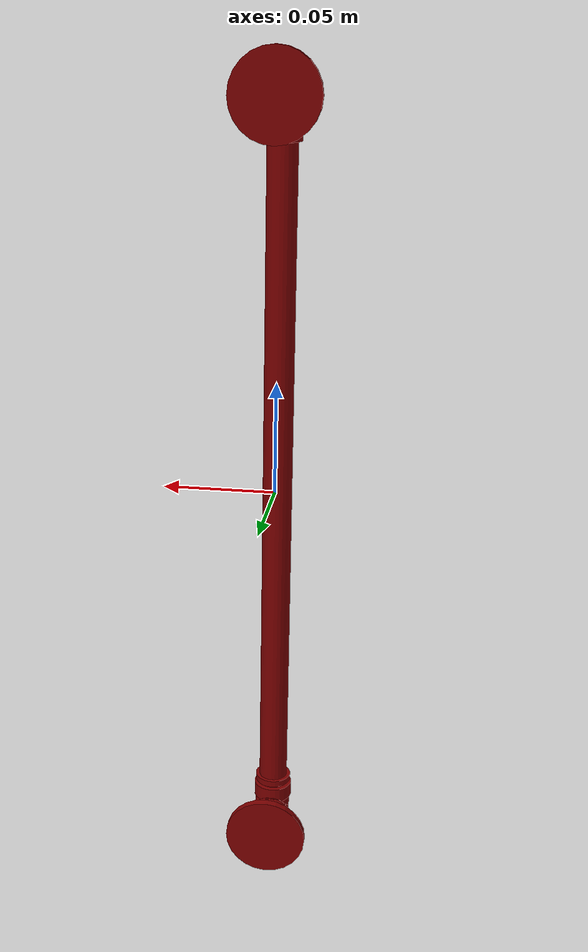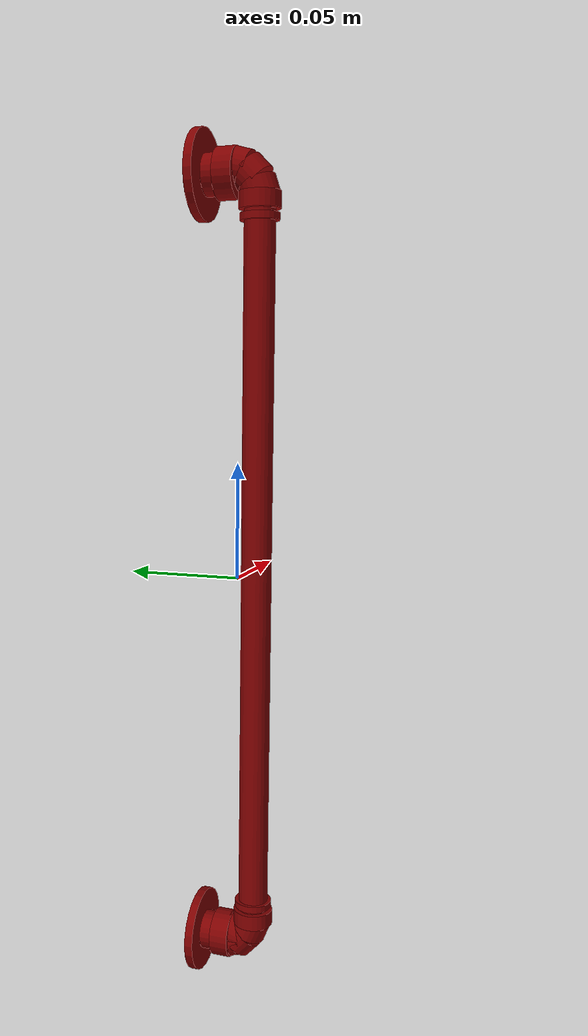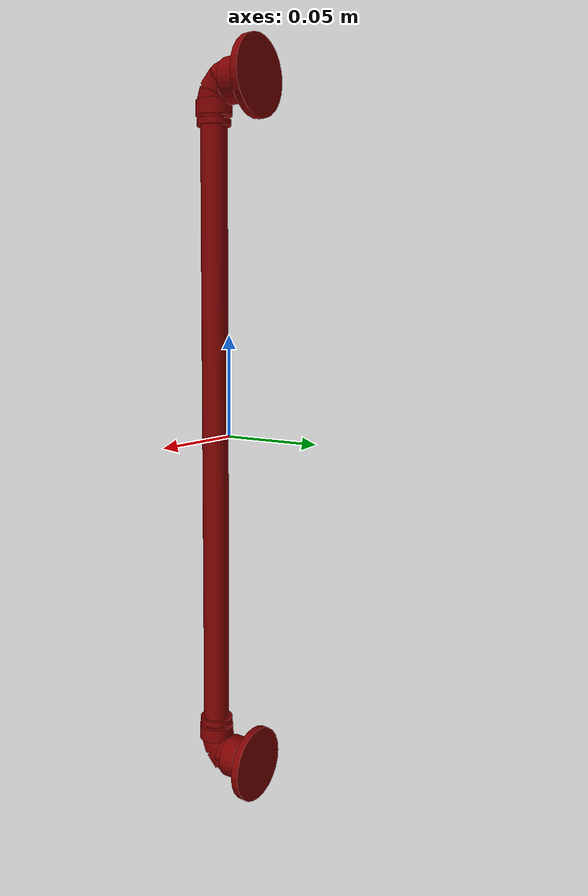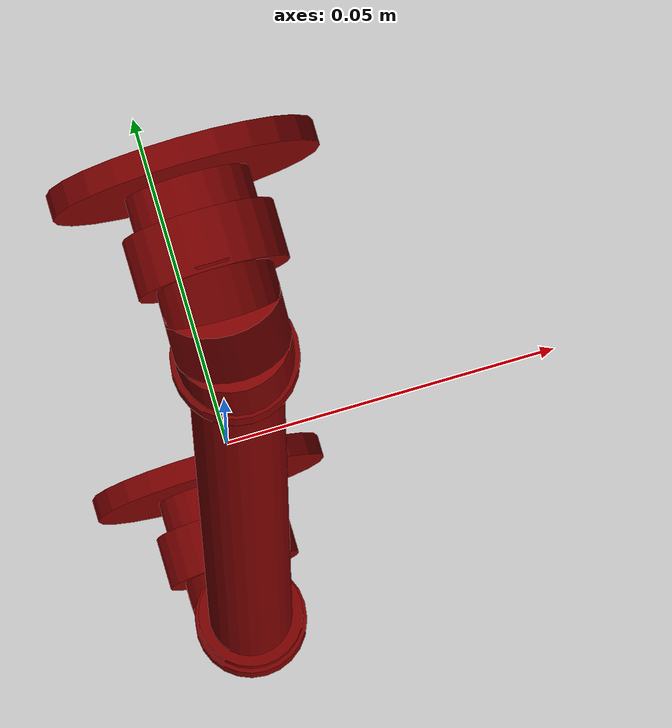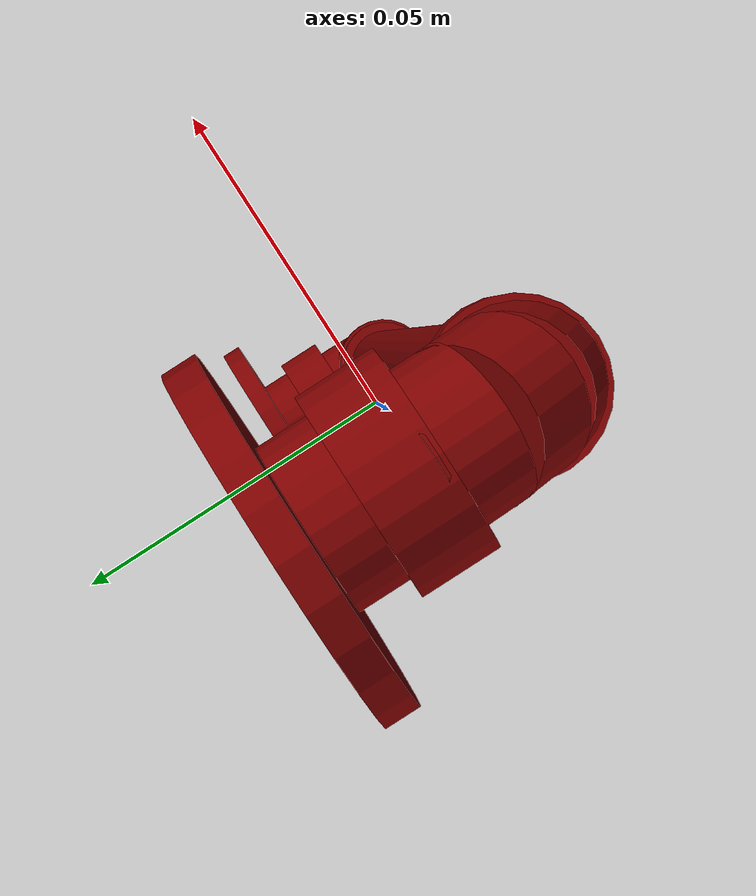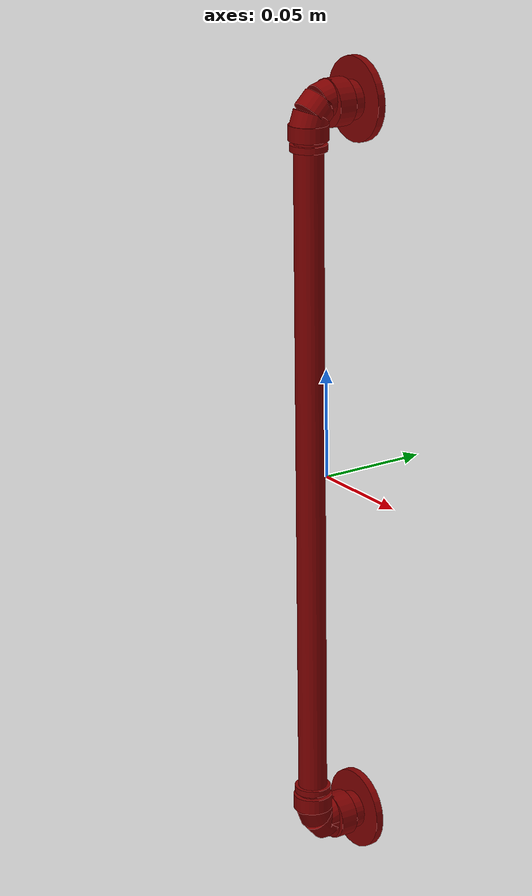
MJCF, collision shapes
<?xml version='1.0' encoding='UTF-8'?>
<mujoco model="model">
  <option timestep="0.002" gravity="0.0 0.0 -9.81"/>
  <compiler angle="radian"/>
  <asset>
    <mesh file="visuals/CabinetHandle024.obj" name="CabinetHandle024_vis"/>
    <texture file="visuals/T_BC001.png" name="tex" type="2d"/>
    <material name="mat" rgba="1 1 1 1.0" texture="tex" shininess="0.5" specular="0.3103448502657381"/>
  </asset>
  <default>
    <default class="visual">
      <geom conaffinity="0" contype="0" group="1" type="mesh"/>
    </default>
    <default class="collision">
      <geom group="0" rgba="0.5 0 0 0.5" density="1.0" solref="0.004 1" solimp="0.998 0.998 0.001"/>
    </default>
    <default class="spawn">
      <geom group="0" rgba="1 1 1 0.5" contype="0" conaffinity="0"/>
      <site group="0" rgba="1 1 1 0.5"/>
    </default>
    <default class="region">
      <geom group="1" conaffinity="0" contype="0" rgba="0 1 0 0" mass="0"/>
    </default>
  </default>
  <worldbody>
    <body>
      <body name="object">
        <geom mesh="CabinetHandle024_vis" type="mesh" solimp="0.998 0.998 0.001" solref="0.001 1" friction="0.95 0.3 0.1" class="visual" material="mat"/>
        <geom type="cylinder" pos="0.00000000 -0.00868421 0.00000000" size="0.006600239314138889 0.15468235313892365" quat="1.0 0.0 0.0 0.0" class="collision"/>
        <geom type="cylinder" pos="0.00002970 -0.00868389 0.15108328" size="0.008304758928716183 0.0014920090325176716" quat="1.0 0.0 0.0 0.0" class="collision"/>
        <geom type="cylinder" pos="0.00002970 -0.00868389 0.15761906" size="0.008858817629516125 0.003446632996201515" quat="1.0 0.0 0.0 0.0" class="collision"/>
        <geom type="cylinder" pos="0.00002970 -0.00824616 0.16166693" size="0.00817962922155857 0.0039684707298874855" quat="0.9868723750114441 -0.16150222718715668 -3.5860698230284855e-17 5.875262472686947e-25" class="collision"/>
        <geom type="cylinder" pos="0.00002970 -0.00499449 0.16749978" size="0.00817962922155857 0.003968469798564911" quat="0.9256041049957275 -0.3784931004047394 -8.404235094622056e-17 -7.293479073283611e-25" class="collision"/>
        <geom type="cylinder" pos="0.00002970 0.00010932 0.17061262" size="0.00817962922155857 0.0039684707298874855" quat="0.7993851900100708 -0.6008188724517822 -1.3340860239994856e-16 -1.4669232986322927e-23" class="collision"/>
        <geom type="cylinder" pos="0.00002970 0.00497106 0.16886334" size="0.01061407383531332 0.004129537381231785" quat="0.7071068286895752 -0.7071067690849304 -0.0 0.0" class="collision"/>
        <geom type="cylinder" pos="0.00002970 0.01248147 0.16880602" size="0.008694551885128021 0.003382723778486252" quat="0.7071068286895752 -0.7071067690849304 -0.0 0.0" class="collision"/>
        <geom type="cylinder" pos="0.00002970 0.01626533 0.16886334" size="0.018710074946284294 0.0017944127321243286" quat="0.7071068286895752 -0.7071067690849304 -0.0 0.0" class="collision"/>
        <geom type="cylinder" pos="0.00002970 -0.00868389 -0.15756774" size="0.008858817629516125 0.003446632996201515" quat="1.0 0.0 0.0 0.0" class="collision"/>
        <geom type="cylinder" pos="0.00002970 -0.00755818 -0.16280757" size="0.00817962922155857 0.0039684707298874855" quat="0.9833585023880005 0.18167567253112793 4.0340109549108564e-17 -4.624171281064852e-24" class="collision"/>
        <geom type="cylinder" pos="0.00002970 -0.00338921 -0.16895698" size="0.00817962922155857 0.003968469798564911" quat="0.9347996711730957 0.3551754951477051 7.886479588167965e-17 -1.36832193720234e-24" class="collision"/>
        <geom type="cylinder" pos="0.00002970 0.00010932 -0.16710542" size="0.00817962922155857 0.0039684707298874855" quat="0.7993851900100708 -0.6008188724517822 -1.3340860239994856e-16 -1.4669232986322927e-23" class="collision"/>
        <geom type="cylinder" pos="0.00002970 0.00497106 -0.16885470" size="0.01061407383531332 0.004129537381231785" quat="0.7071068286895752 -0.7071067690849304 -0.0 0.0" class="collision"/>
        <geom type="cylinder" pos="0.00002970 0.01248147 -0.16891202" size="0.008694551885128021 0.003382723778486252" quat="0.7071068286895752 -0.7071067690849304 -0.0 0.0" class="collision"/>
        <geom type="cylinder" pos="0.00002970 0.01626533 -0.16885470" size="0.018710074946284294 0.0017944127321243286" quat="0.7071068286895752 -0.7071067690849304 -0.0 0.0" class="collision"/>
        <geom type="cylinder" pos="0.00002970 -0.00868389 -0.15116557" size="0.008304758928716183 0.0014920090325176716" quat="1.0 0.0 0.0 0.0" class="collision"/>
        <geom type="cylinder" pos="0.00002970 0.00010932 -0.17026627" size="0.00817962922155857 0.0039684707298874855" quat="0.5802639722824097 -0.814428448677063 -1.808394563610944e-16 -5.135739295061173e-24" class="collision"/>
        <geom class="region" name="reg_main" type="box" pos="0.0 5.999999999964367e-08 0.0" size="0.01956259 0.019060940000000002 0.18836395"/>
      </body>
    </body>
  </worldbody>
  <actuator/>
</mujoco>
